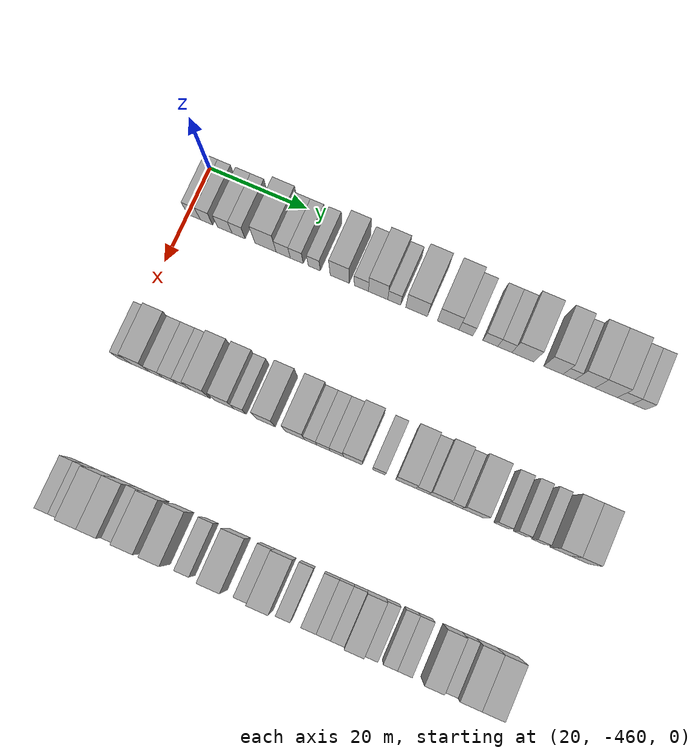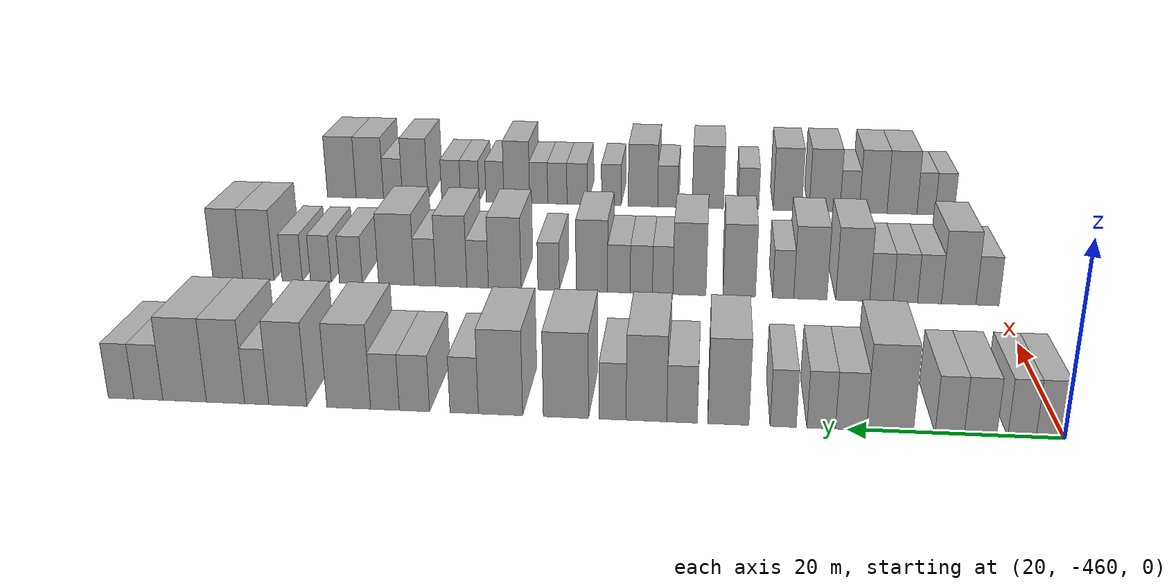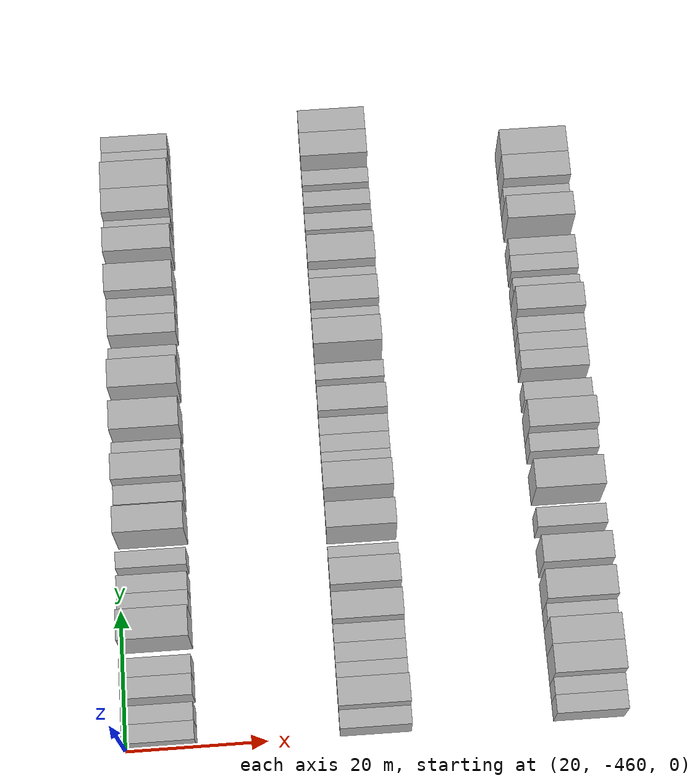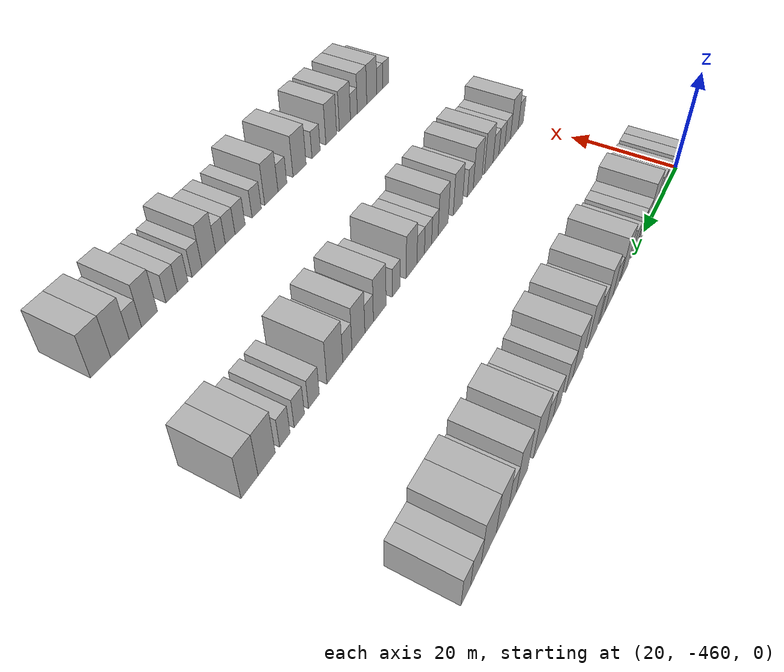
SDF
<sdf version="1.6">
 <world name="default">
  <model name="building_1">
   <static>1</static>
   <pose>25.0000 -458.6790 0 0.000000 0.000000 0.000000</pose>
   <link name="link">
    <pose>0 0 3.00 0 0 0</pose>
    <collision name="collision"><geometry><box><size>10.0000 2.6420 6.0000</size></box></geometry></collision>
    <visual name="visual">
     <cast_shadows>0</cast_shadows>
     <geometry><box><size>10.0000 2.6420 6.0000</size></box></geometry>
     <material>
      <script>
       <uri>model://HANNAS_wall/materials/scripts</uri>
       <uri>model://HANNAS_wall/materials/textures</uri>
       <name>vrc/HANNAS_wall</name>
      </script>
     </material>
    </visual>
   </link>
  </model>
  <model name="building_2">
   <static>1</static>
   <pose>25.0000 -456.0709 0 0.000000 0.000000 0.000000</pose>
   <link name="link">
    <pose>0 0 3.00 0 0 0</pose>
    <collision name="collision"><geometry><box><size>10.0000 2.5742 6.0000</size></box></geometry></collision>
    <visual name="visual">
     <cast_shadows>0</cast_shadows>
     <geometry><box><size>10.0000 2.5742 6.0000</size></box></geometry>
     <material>
      <script>
       <uri>model://HANNAS_wall/materials/scripts</uri>
       <uri>model://HANNAS_wall/materials/textures</uri>
       <name>vrc/HANNAS_wall</name>
      </script>
     </material>
    </visual>
   </link>
  </model>
  <model name="building_3">
   <static>1</static>
   <pose>25.0000 -452.2917 0 0.000000 0.000000 0.000000</pose>
   <link name="link">
    <pose>0 0 3.00 0 0 0</pose>
    <collision name="collision"><geometry><box><size>10.0000 2.9840 6.0000</size></box></geometry></collision>
    <visual name="visual">
     <cast_shadows>0</cast_shadows>
     <geometry><box><size>10.0000 2.9840 6.0000</size></box></geometry>
     <material>
      <script>
       <uri>model://HANNAS_wall/materials/scripts</uri>
       <uri>model://HANNAS_wall/materials/textures</uri>
       <name>vrc/HANNAS_wall</name>
      </script>
     </material>
    </visual>
   </link>
  </model>
  <model name="building_4">
   <static>1</static>
   <pose>25.0000 -449.4564 0 0.000000 0.000000 0.000000</pose>
   <link name="link">
    <pose>0 0 3.00 0 0 0</pose>
    <collision name="collision"><geometry><box><size>10.0000 2.6867 6.0000</size></box></geometry></collision>
    <visual name="visual">
     <cast_shadows>0</cast_shadows>
     <geometry><box><size>10.0000 2.6867 6.0000</size></box></geometry>
     <material>
      <script>
       <uri>model://HANNAS_wall/materials/scripts</uri>
       <uri>model://HANNAS_wall/materials/textures</uri>
       <name>vrc/HANNAS_wall</name>
      </script>
     </material>
    </visual>
   </link>
  </model>
  <model name="building_5">
   <static>1</static>
   <pose>25.0000 -443.9394 0 0.000000 0.000000 0.000000</pose>
   <link name="link">
    <pose>0 0 4.50 0 0 0</pose>
    <collision name="collision"><geometry><box><size>10.0000 4.3474 9.0000</size></box></geometry></collision>
    <visual name="visual">
     <cast_shadows>0</cast_shadows>
     <geometry><box><size>10.0000 4.3474 9.0000</size></box></geometry>
     <material>
      <script>
       <uri>model://HANNAS_wall/materials/scripts</uri>
       <uri>model://HANNAS_wall/materials/textures</uri>
       <name>vrc/HANNAS_wall</name>
      </script>
     </material>
    </visual>
   </link>
  </model>
  <model name="building_6">
   <static>1</static>
   <pose>25.0000 -440.3176 0 0.000000 0.000000 0.000000</pose>
   <link name="link">
    <pose>0 0 3.00 0 0 0</pose>
    <collision name="collision"><geometry><box><size>10.0000 2.8962 6.0000</size></box></geometry></collision>
    <visual name="visual">
     <cast_shadows>0</cast_shadows>
     <geometry><box><size>10.0000 2.8962 6.0000</size></box></geometry>
     <material>
      <script>
       <uri>model://HANNAS_wall/materials/scripts</uri>
       <uri>model://HANNAS_wall/materials/textures</uri>
       <name>vrc/HANNAS_wall</name>
      </script>
     </material>
    </visual>
   </link>
  </model>
  <model name="building_7">
   <static>1</static>
   <pose>25.0000 -437.5378 0 0.000000 0.000000 0.000000</pose>
   <link name="link">
    <pose>0 0 3.00 0 0 0</pose>
    <collision name="collision"><geometry><box><size>10.0000 2.6634 6.0000</size></box></geometry></collision>
    <visual name="visual">
     <cast_shadows>0</cast_shadows>
     <geometry><box><size>10.0000 2.6634 6.0000</size></box></geometry>
     <material>
      <script>
       <uri>model://HANNAS_wall/materials/scripts</uri>
       <uri>model://HANNAS_wall/materials/textures</uri>
       <name>vrc/HANNAS_wall</name>
      </script>
     </material>
    </visual>
   </link>
  </model>
  <model name="building_8">
   <static>1</static>
   <pose>25.0000 -433.9782 0 0.000000 0.000000 0.000000</pose>
   <link name="link">
    <pose>0 0 3.00 0 0 0</pose>
    <collision name="collision"><geometry><box><size>10.0000 2.4559 6.0000</size></box></geometry></collision>
    <visual name="visual">
     <cast_shadows>0</cast_shadows>
     <geometry><box><size>10.0000 2.4559 6.0000</size></box></geometry>
     <material>
      <script>
       <uri>model://HANNAS_wall/materials/scripts</uri>
       <uri>model://HANNAS_wall/materials/textures</uri>
       <name>vrc/HANNAS_wall</name>
      </script>
     </material>
    </visual>
   </link>
  </model>
  <model name="building_9">
   <static>1</static>
   <pose>25.0000 -428.8074 0 0.000000 0.000000 0.000000</pose>
   <link name="link">
    <pose>0 0 4.50 0 0 0</pose>
    <collision name="collision"><geometry><box><size>10.0000 3.8858 9.0000</size></box></geometry></collision>
    <visual name="visual">
     <cast_shadows>0</cast_shadows>
     <geometry><box><size>10.0000 3.8858 9.0000</size></box></geometry>
     <material>
      <script>
       <uri>model://HANNAS_wall/materials/scripts</uri>
       <uri>model://HANNAS_wall/materials/textures</uri>
       <name>vrc/HANNAS_wall</name>
      </script>
     </material>
    </visual>
   </link>
  </model>
  <model name="building_10">
   <static>1</static>
   <pose>25.0000 -424.4142 0 0.000000 0.000000 0.000000</pose>
   <link name="link">
    <pose>0 0 3.00 0 0 0</pose>
    <collision name="collision"><geometry><box><size>10.0000 2.9006 6.0000</size></box></geometry></collision>
    <visual name="visual">
     <cast_shadows>0</cast_shadows>
     <geometry><box><size>10.0000 2.9006 6.0000</size></box></geometry>
     <material>
      <script>
       <uri>model://HANNAS_wall/materials/scripts</uri>
       <uri>model://HANNAS_wall/materials/textures</uri>
       <name>vrc/HANNAS_wall</name>
      </script>
     </material>
    </visual>
   </link>
  </model>
  <model name="building_11">
   <static>1</static>
   <pose>25.0000 -421.0236 0 0.000000 0.000000 0.000000</pose>
   <link name="link">
    <pose>0 0 4.50 0 0 0</pose>
    <collision name="collision"><geometry><box><size>10.0000 3.8806 9.0000</size></box></geometry></collision>
    <visual name="visual">
     <cast_shadows>0</cast_shadows>
     <geometry><box><size>10.0000 3.8806 9.0000</size></box></geometry>
     <material>
      <script>
       <uri>model://HANNAS_wall/materials/scripts</uri>
       <uri>model://HANNAS_wall/materials/textures</uri>
       <name>vrc/HANNAS_wall</name>
      </script>
     </material>
    </visual>
   </link>
  </model>
  <model name="building_12">
   <static>1</static>
   <pose>25.0000 -417.7774 0 0.000000 0.000000 0.000000</pose>
   <link name="link">
    <pose>0 0 3.00 0 0 0</pose>
    <collision name="collision"><geometry><box><size>10.0000 2.6117 6.0000</size></box></geometry></collision>
    <visual name="visual">
     <cast_shadows>0</cast_shadows>
     <geometry><box><size>10.0000 2.6117 6.0000</size></box></geometry>
     <material>
      <script>
       <uri>model://HANNAS_wall/materials/scripts</uri>
       <uri>model://HANNAS_wall/materials/textures</uri>
       <name>vrc/HANNAS_wall</name>
      </script>
     </material>
    </visual>
   </link>
  </model>
  <model name="building_13">
   <static>1</static>
   <pose>25.0000 -413.2900 0 0.000000 0.000000 0.000000</pose>
   <link name="link">
    <pose>0 0 4.50 0 0 0</pose>
    <collision name="collision"><geometry><box><size>10.0000 4.3631 9.0000</size></box></geometry></collision>
    <visual name="visual">
     <cast_shadows>0</cast_shadows>
     <geometry><box><size>10.0000 4.3631 9.0000</size></box></geometry>
     <material>
      <script>
       <uri>model://HANNAS_wall/materials/scripts</uri>
       <uri>model://HANNAS_wall/materials/textures</uri>
       <name>vrc/HANNAS_wall</name>
      </script>
     </material>
    </visual>
   </link>
  </model>
  <model name="building_14">
   <static>1</static>
   <pose>25.0000 -406.9527 0 0.000000 0.000000 0.000000</pose>
   <link name="link">
    <pose>0 0 4.50 0 0 0</pose>
    <collision name="collision"><geometry><box><size>10.0000 4.3116 9.0000</size></box></geometry></collision>
    <visual name="visual">
     <cast_shadows>0</cast_shadows>
     <geometry><box><size>10.0000 4.3116 9.0000</size></box></geometry>
     <material>
      <script>
       <uri>model://HANNAS_wall/materials/scripts</uri>
       <uri>model://HANNAS_wall/materials/textures</uri>
       <name>vrc/HANNAS_wall</name>
      </script>
     </material>
    </visual>
   </link>
  </model>
  <model name="building_15">
   <static>1</static>
   <pose>25.0000 -403.4073 0 0.000000 0.000000 0.000000</pose>
   <link name="link">
    <pose>0 0 3.00 0 0 0</pose>
    <collision name="collision"><geometry><box><size>10.0000 2.7791 6.0000</size></box></geometry></collision>
    <visual name="visual">
     <cast_shadows>0</cast_shadows>
     <geometry><box><size>10.0000 2.7791 6.0000</size></box></geometry>
     <material>
      <script>
       <uri>model://HANNAS_wall/materials/scripts</uri>
       <uri>model://HANNAS_wall/materials/textures</uri>
       <name>vrc/HANNAS_wall</name>
      </script>
     </material>
    </visual>
   </link>
  </model>
  <model name="building_16">
   <static>1</static>
   <pose>25.0000 -398.5282 0 0.000000 0.000000 0.000000</pose>
   <link name="link">
    <pose>0 0 3.00 0 0 0</pose>
    <collision name="collision"><geometry><box><size>10.0000 2.9791 6.0000</size></box></geometry></collision>
    <visual name="visual">
     <cast_shadows>0</cast_shadows>
     <geometry><box><size>10.0000 2.9791 6.0000</size></box></geometry>
     <material>
      <script>
       <uri>model://HANNAS_wall/materials/scripts</uri>
       <uri>model://HANNAS_wall/materials/textures</uri>
       <name>vrc/HANNAS_wall</name>
      </script>
     </material>
    </visual>
   </link>
  </model>
  <model name="building_17">
   <static>1</static>
   <pose>25.0000 -395.6226 0 0.000000 0.000000 0.000000</pose>
   <link name="link">
    <pose>0 0 3.00 0 0 0</pose>
    <collision name="collision"><geometry><box><size>10.0000 2.8319 6.0000</size></box></geometry></collision>
    <visual name="visual">
     <cast_shadows>0</cast_shadows>
     <geometry><box><size>10.0000 2.8319 6.0000</size></box></geometry>
     <material>
      <script>
       <uri>model://HANNAS_wall/materials/scripts</uri>
       <uri>model://HANNAS_wall/materials/textures</uri>
       <name>vrc/HANNAS_wall</name>
      </script>
     </material>
    </visual>
   </link>
  </model>
  <model name="building_18">
   <static>1</static>
   <pose>25.0000 -392.0398 0 0.000000 0.000000 0.000000</pose>
   <link name="link">
    <pose>0 0 4.50 0 0 0</pose>
    <collision name="collision"><geometry><box><size>10.0000 4.3338 9.0000</size></box></geometry></collision>
    <visual name="visual">
     <cast_shadows>0</cast_shadows>
     <geometry><box><size>10.0000 4.3338 9.0000</size></box></geometry>
     <material>
      <script>
       <uri>model://HANNAS_wall/materials/scripts</uri>
       <uri>model://HANNAS_wall/materials/textures</uri>
       <name>vrc/HANNAS_wall</name>
      </script>
     </material>
    </visual>
   </link>
  </model>
  <model name="building_19">
   <static>1</static>
   <pose>25.0000 -385.9689 0 0.000000 0.000000 0.000000</pose>
   <link name="link">
    <pose>0 0 4.50 0 0 0</pose>
    <collision name="collision"><geometry><box><size>10.0000 3.8081 9.0000</size></box></geometry></collision>
    <visual name="visual">
     <cast_shadows>0</cast_shadows>
     <geometry><box><size>10.0000 3.8081 9.0000</size></box></geometry>
     <material>
      <script>
       <uri>model://HANNAS_wall/materials/scripts</uri>
       <uri>model://HANNAS_wall/materials/textures</uri>
       <name>vrc/HANNAS_wall</name>
      </script>
     </material>
    </visual>
   </link>
  </model>
  <model name="building_20">
   <static>1</static>
   <pose>25.0000 -382.8556 0 0.000000 0.000000 0.000000</pose>
   <link name="link">
    <pose>0 0 3.00 0 0 0</pose>
    <collision name="collision"><geometry><box><size>10.0000 2.4185 6.0000</size></box></geometry></collision>
    <visual name="visual">
     <cast_shadows>0</cast_shadows>
     <geometry><box><size>10.0000 2.4185 6.0000</size></box></geometry>
     <material>
      <script>
       <uri>model://HANNAS_wall/materials/scripts</uri>
       <uri>model://HANNAS_wall/materials/textures</uri>
       <name>vrc/HANNAS_wall</name>
      </script>
     </material>
    </visual>
   </link>
  </model>
  <model name="building_21">
   <static>1</static>
   <pose>25.0000 -379.7127 0 0.000000 0.000000 0.000000</pose>
   <link name="link">
    <pose>0 0 4.50 0 0 0</pose>
    <collision name="collision"><geometry><box><size>10.0000 3.8672 9.0000</size></box></geometry></collision>
    <visual name="visual">
     <cast_shadows>0</cast_shadows>
     <geometry><box><size>10.0000 3.8672 9.0000</size></box></geometry>
     <material>
      <script>
       <uri>model://HANNAS_wall/materials/scripts</uri>
       <uri>model://HANNAS_wall/materials/textures</uri>
       <name>vrc/HANNAS_wall</name>
      </script>
     </material>
    </visual>
   </link>
  </model>
  <model name="building_22">
   <static>1</static>
   <pose>25.0000 -375.5730 0 0.000000 0.000000 0.000000</pose>
   <link name="link">
    <pose>0 0 4.50 0 0 0</pose>
    <collision name="collision"><geometry><box><size>10.0000 4.4122 9.0000</size></box></geometry></collision>
    <visual name="visual">
     <cast_shadows>0</cast_shadows>
     <geometry><box><size>10.0000 4.4122 9.0000</size></box></geometry>
     <material>
      <script>
       <uri>model://HANNAS_wall/materials/scripts</uri>
       <uri>model://HANNAS_wall/materials/textures</uri>
       <name>vrc/HANNAS_wall</name>
      </script>
     </material>
    </visual>
   </link>
  </model>
  <model name="building_23">
   <static>1</static>
   <pose>25.0000 -371.8883 0 0.000000 0.000000 0.000000</pose>
   <link name="link">
    <pose>0 0 3.00 0 0 0</pose>
    <collision name="collision"><geometry><box><size>10.0000 2.9571 6.0000</size></box></geometry></collision>
    <visual name="visual">
     <cast_shadows>0</cast_shadows>
     <geometry><box><size>10.0000 2.9571 6.0000</size></box></geometry>
     <material>
      <script>
       <uri>model://HANNAS_wall/materials/scripts</uri>
       <uri>model://HANNAS_wall/materials/textures</uri>
       <name>vrc/HANNAS_wall</name>
      </script>
     </material>
    </visual>
   </link>
  </model>
  <model name="building_24">
   <static>1</static>
   <pose>25.0000 -369.1019 0 0.000000 0.000000 0.000000</pose>
   <link name="link">
    <pose>0 0 3.00 0 0 0</pose>
    <collision name="collision"><geometry><box><size>10.0000 2.6157 6.0000</size></box></geometry></collision>
    <visual name="visual">
     <cast_shadows>0</cast_shadows>
     <geometry><box><size>10.0000 2.6157 6.0000</size></box></geometry>
     <material>
      <script>
       <uri>model://HANNAS_wall/materials/scripts</uri>
       <uri>model://HANNAS_wall/materials/textures</uri>
       <name>vrc/HANNAS_wall</name>
      </script>
     </material>
    </visual>
   </link>
  </model>
  <model name="building_226">
   <static>1</static>
   <pose>55.0000 -458.6946 0 0.000000 0.000000 0.000000</pose>
   <link name="link">
    <pose>0 0 3.00 0 0 0</pose>
    <collision name="collision"><geometry><box><size>10.0000 2.6108 6.0000</size></box></geometry></collision>
    <visual name="visual">
     <cast_shadows>0</cast_shadows>
     <geometry><box><size>10.0000 2.6108 6.0000</size></box></geometry>
     <material>
      <script>
       <uri>model://HANNAS_wall/materials/scripts</uri>
       <uri>model://HANNAS_wall/materials/textures</uri>
       <name>vrc/HANNAS_wall</name>
      </script>
     </material>
    </visual>
   </link>
  </model>
  <model name="building_227">
   <static>1</static>
   <pose>55.0000 -455.4352 0 0.000000 0.000000 0.000000</pose>
   <link name="link">
    <pose>0 0 4.50 0 0 0</pose>
    <collision name="collision"><geometry><box><size>10.0000 3.9079 9.0000</size></box></geometry></collision>
    <visual name="visual">
     <cast_shadows>0</cast_shadows>
     <geometry><box><size>10.0000 3.9079 9.0000</size></box></geometry>
     <material>
      <script>
       <uri>model://HANNAS_wall/materials/scripts</uri>
       <uri>model://HANNAS_wall/materials/textures</uri>
       <name>vrc/HANNAS_wall</name>
      </script>
     </material>
    </visual>
   </link>
  </model>
  <model name="building_228">
   <static>1</static>
   <pose>55.0000 -452.1203 0 0.000000 0.000000 0.000000</pose>
   <link name="link">
    <pose>0 0 3.00 0 0 0</pose>
    <collision name="collision"><geometry><box><size>10.0000 2.7219 6.0000</size></box></geometry></collision>
    <visual name="visual">
     <cast_shadows>0</cast_shadows>
     <geometry><box><size>10.0000 2.7219 6.0000</size></box></geometry>
     <material>
      <script>
       <uri>model://HANNAS_wall/materials/scripts</uri>
       <uri>model://HANNAS_wall/materials/textures</uri>
       <name>vrc/HANNAS_wall</name>
      </script>
     </material>
    </visual>
   </link>
  </model>
  <model name="building_229">
   <static>1</static>
   <pose>55.0000 -449.3697 0 0.000000 0.000000 0.000000</pose>
   <link name="link">
    <pose>0 0 3.00 0 0 0</pose>
    <collision name="collision"><geometry><box><size>10.0000 2.7792 6.0000</size></box></geometry></collision>
    <visual name="visual">
     <cast_shadows>0</cast_shadows>
     <geometry><box><size>10.0000 2.7792 6.0000</size></box></geometry>
     <material>
      <script>
       <uri>model://HANNAS_wall/materials/scripts</uri>
       <uri>model://HANNAS_wall/materials/textures</uri>
       <name>vrc/HANNAS_wall</name>
      </script>
     </material>
    </visual>
   </link>
  </model>
  <model name="building_230">
   <static>1</static>
   <pose>55.0000 -446.6404 0 0.000000 0.000000 0.000000</pose>
   <link name="link">
    <pose>0 0 3.00 0 0 0</pose>
    <collision name="collision"><geometry><box><size>10.0000 2.6795 6.0000</size></box></geometry></collision>
    <visual name="visual">
     <cast_shadows>0</cast_shadows>
     <geometry><box><size>10.0000 2.6795 6.0000</size></box></geometry>
     <material>
      <script>
       <uri>model://HANNAS_wall/materials/scripts</uri>
       <uri>model://HANNAS_wall/materials/textures</uri>
       <name>vrc/HANNAS_wall</name>
      </script>
     </material>
    </visual>
   </link>
  </model>
  <model name="building_231">
   <static>1</static>
   <pose>55.0000 -443.3521 0 0.000000 0.000000 0.000000</pose>
   <link name="link">
    <pose>0 0 4.50 0 0 0</pose>
    <collision name="collision"><geometry><box><size>10.0000 3.8971 9.0000</size></box></geometry></collision>
    <visual name="visual">
     <cast_shadows>0</cast_shadows>
     <geometry><box><size>10.0000 3.8971 9.0000</size></box></geometry>
     <material>
      <script>
       <uri>model://HANNAS_wall/materials/scripts</uri>
       <uri>model://HANNAS_wall/materials/textures</uri>
       <name>vrc/HANNAS_wall</name>
      </script>
     </material>
    </visual>
   </link>
  </model>
  <model name="building_232">
   <static>1</static>
   <pose>55.0000 -438.4845 0 0.000000 0.000000 0.000000</pose>
   <link name="link">
    <pose>0 0 4.50 0 0 0</pose>
    <collision name="collision"><geometry><box><size>10.0000 3.8381 9.0000</size></box></geometry></collision>
    <visual name="visual">
     <cast_shadows>0</cast_shadows>
     <geometry><box><size>10.0000 3.8381 9.0000</size></box></geometry>
     <material>
      <script>
       <uri>model://HANNAS_wall/materials/scripts</uri>
       <uri>model://HANNAS_wall/materials/textures</uri>
       <name>vrc/HANNAS_wall</name>
      </script>
     </material>
    </visual>
   </link>
  </model>
  <model name="building_233">
   <static>1</static>
   <pose>55.0000 -435.3459 0 0.000000 0.000000 0.000000</pose>
   <link name="link">
    <pose>0 0 3.00 0 0 0</pose>
    <collision name="collision"><geometry><box><size>10.0000 2.4391 6.0000</size></box></geometry></collision>
    <visual name="visual">
     <cast_shadows>0</cast_shadows>
     <geometry><box><size>10.0000 2.4391 6.0000</size></box></geometry>
     <material>
      <script>
       <uri>model://HANNAS_wall/materials/scripts</uri>
       <uri>model://HANNAS_wall/materials/textures</uri>
       <name>vrc/HANNAS_wall</name>
      </script>
     </material>
    </visual>
   </link>
  </model>
  <model name="building_234">
   <static>1</static>
   <pose>55.0000 -430.2498 0 0.000000 0.000000 0.000000</pose>
   <link name="link">
    <pose>0 0 4.50 0 0 0</pose>
    <collision name="collision"><geometry><box><size>10.0000 3.7531 9.0000</size></box></geometry></collision>
    <visual name="visual">
     <cast_shadows>0</cast_shadows>
     <geometry><box><size>10.0000 3.7531 9.0000</size></box></geometry>
     <material>
      <script>
       <uri>model://HANNAS_wall/materials/scripts</uri>
       <uri>model://HANNAS_wall/materials/textures</uri>
       <name>vrc/HANNAS_wall</name>
      </script>
     </material>
    </visual>
   </link>
  </model>
  <model name="building_235">
   <static>1</static>
   <pose>55.0000 -424.4421 0 0.000000 0.000000 0.000000</pose>
   <link name="link">
    <pose>0 0 4.50 0 0 0</pose>
    <collision name="collision"><geometry><box><size>10.0000 3.8623 9.0000</size></box></geometry></collision>
    <visual name="visual">
     <cast_shadows>0</cast_shadows>
     <geometry><box><size>10.0000 3.8623 9.0000</size></box></geometry>
     <material>
      <script>
       <uri>model://HANNAS_wall/materials/scripts</uri>
       <uri>model://HANNAS_wall/materials/textures</uri>
       <name>vrc/HANNAS_wall</name>
      </script>
     </material>
    </visual>
   </link>
  </model>
  <model name="building_236">
   <static>1</static>
   <pose>55.0000 -421.3061 0 0.000000 0.000000 0.000000</pose>
   <link name="link">
    <pose>0 0 3.00 0 0 0</pose>
    <collision name="collision"><geometry><box><size>10.0000 2.4098 6.0000</size></box></geometry></collision>
    <visual name="visual">
     <cast_shadows>0</cast_shadows>
     <geometry><box><size>10.0000 2.4098 6.0000</size></box></geometry>
     <material>
      <script>
       <uri>model://HANNAS_wall/materials/scripts</uri>
       <uri>model://HANNAS_wall/materials/textures</uri>
       <name>vrc/HANNAS_wall</name>
      </script>
     </material>
    </visual>
   </link>
  </model>
  <model name="building_237">
   <static>1</static>
   <pose>55.0000 -418.7952 0 0.000000 0.000000 0.000000</pose>
   <link name="link">
    <pose>0 0 3.00 0 0 0</pose>
    <collision name="collision"><geometry><box><size>10.0000 2.6119 6.0000</size></box></geometry></collision>
    <visual name="visual">
     <cast_shadows>0</cast_shadows>
     <geometry><box><size>10.0000 2.6119 6.0000</size></box></geometry>
     <material>
      <script>
       <uri>model://HANNAS_wall/materials/scripts</uri>
       <uri>model://HANNAS_wall/materials/textures</uri>
       <name>vrc/HANNAS_wall</name>
      </script>
     </material>
    </visual>
   </link>
  </model>
  <model name="building_238">
   <static>1</static>
   <pose>55.0000 -416.1549 0 0.000000 0.000000 0.000000</pose>
   <link name="link">
    <pose>0 0 3.00 0 0 0</pose>
    <collision name="collision"><geometry><box><size>10.0000 2.6687 6.0000</size></box></geometry></collision>
    <visual name="visual">
     <cast_shadows>0</cast_shadows>
     <geometry><box><size>10.0000 2.6687 6.0000</size></box></geometry>
     <material>
      <script>
       <uri>model://HANNAS_wall/materials/scripts</uri>
       <uri>model://HANNAS_wall/materials/textures</uri>
       <name>vrc/HANNAS_wall</name>
      </script>
     </material>
    </visual>
   </link>
  </model>
  <model name="building_239">
   <static>1</static>
   <pose>55.0000 -412.9549 0 0.000000 0.000000 0.000000</pose>
   <link name="link">
    <pose>0 0 4.50 0 0 0</pose>
    <collision name="collision"><geometry><box><size>10.0000 3.7312 9.0000</size></box></geometry></collision>
    <visual name="visual">
     <cast_shadows>0</cast_shadows>
     <geometry><box><size>10.0000 3.7312 9.0000</size></box></geometry>
     <material>
      <script>
       <uri>model://HANNAS_wall/materials/scripts</uri>
       <uri>model://HANNAS_wall/materials/textures</uri>
       <name>vrc/HANNAS_wall</name>
      </script>
     </material>
    </visual>
   </link>
  </model>
  <model name="building_240">
   <static>1</static>
   <pose>55.0000 -407.8135 0 0.000000 0.000000 0.000000</pose>
   <link name="link">
    <pose>0 0 3.00 0 0 0</pose>
    <collision name="collision"><geometry><box><size>10.0000 2.5517 6.0000</size></box></geometry></collision>
    <visual name="visual">
     <cast_shadows>0</cast_shadows>
     <geometry><box><size>10.0000 2.5517 6.0000</size></box></geometry>
     <material>
      <script>
       <uri>model://HANNAS_wall/materials/scripts</uri>
       <uri>model://HANNAS_wall/materials/textures</uri>
       <name>vrc/HANNAS_wall</name>
      </script>
     </material>
    </visual>
   </link>
  </model>
  <model name="building_241">
   <static>1</static>
   <pose>55.0000 -402.5745 0 0.000000 0.000000 0.000000</pose>
   <link name="link">
    <pose>0 0 4.50 0 0 0</pose>
    <collision name="collision"><geometry><box><size>10.0000 3.9262 9.0000</size></box></geometry></collision>
    <visual name="visual">
     <cast_shadows>0</cast_shadows>
     <geometry><box><size>10.0000 3.9262 9.0000</size></box></geometry>
     <material>
      <script>
       <uri>model://HANNAS_wall/materials/scripts</uri>
       <uri>model://HANNAS_wall/materials/textures</uri>
       <name>vrc/HANNAS_wall</name>
      </script>
     </material>
    </visual>
   </link>
  </model>
  <model name="building_242">
   <static>1</static>
   <pose>55.0000 -399.3239 0 0.000000 0.000000 0.000000</pose>
   <link name="link">
    <pose>0 0 3.00 0 0 0</pose>
    <collision name="collision"><geometry><box><size>10.0000 2.5750 6.0000</size></box></geometry></collision>
    <visual name="visual">
     <cast_shadows>0</cast_shadows>
     <geometry><box><size>10.0000 2.5750 6.0000</size></box></geometry>
     <material>
      <script>
       <uri>model://HANNAS_wall/materials/scripts</uri>
       <uri>model://HANNAS_wall/materials/textures</uri>
       <name>vrc/HANNAS_wall</name>
      </script>
     </material>
    </visual>
   </link>
  </model>
  <model name="building_243">
   <static>1</static>
   <pose>55.0000 -396.1547 0 0.000000 0.000000 0.000000</pose>
   <link name="link">
    <pose>0 0 4.50 0 0 0</pose>
    <collision name="collision"><geometry><box><size>10.0000 3.7635 9.0000</size></box></geometry></collision>
    <visual name="visual">
     <cast_shadows>0</cast_shadows>
     <geometry><box><size>10.0000 3.7635 9.0000</size></box></geometry>
     <material>
      <script>
       <uri>model://HANNAS_wall/materials/scripts</uri>
       <uri>model://HANNAS_wall/materials/textures</uri>
       <name>vrc/HANNAS_wall</name>
      </script>
     </material>
    </visual>
   </link>
  </model>
  <model name="building_244">
   <static>1</static>
   <pose>55.0000 -392.9802 0 0.000000 0.000000 0.000000</pose>
   <link name="link">
    <pose>0 0 3.00 0 0 0</pose>
    <collision name="collision"><geometry><box><size>10.0000 2.5856 6.0000</size></box></geometry></collision>
    <visual name="visual">
     <cast_shadows>0</cast_shadows>
     <geometry><box><size>10.0000 2.5856 6.0000</size></box></geometry>
     <material>
      <script>
       <uri>model://HANNAS_wall/materials/scripts</uri>
       <uri>model://HANNAS_wall/materials/textures</uri>
       <name>vrc/HANNAS_wall</name>
      </script>
     </material>
    </visual>
   </link>
  </model>
  <model name="building_245">
   <static>1</static>
   <pose>55.0000 -389.5143 0 0.000000 0.000000 0.000000</pose>
   <link name="link">
    <pose>0 0 4.50 0 0 0</pose>
    <collision name="collision"><geometry><box><size>10.0000 4.3462 9.0000</size></box></geometry></collision>
    <visual name="visual">
     <cast_shadows>0</cast_shadows>
     <geometry><box><size>10.0000 4.3462 9.0000</size></box></geometry>
     <material>
      <script>
       <uri>model://HANNAS_wall/materials/scripts</uri>
       <uri>model://HANNAS_wall/materials/textures</uri>
       <name>vrc/HANNAS_wall</name>
      </script>
     </material>
    </visual>
   </link>
  </model>
  <model name="building_246">
   <static>1</static>
   <pose>55.0000 -383.9481 0 0.000000 0.000000 0.000000</pose>
   <link name="link">
    <pose>0 0 3.00 0 0 0</pose>
    <collision name="collision"><geometry><box><size>10.0000 2.7863 6.0000</size></box></geometry></collision>
    <visual name="visual">
     <cast_shadows>0</cast_shadows>
     <geometry><box><size>10.0000 2.7863 6.0000</size></box></geometry>
     <material>
      <script>
       <uri>model://HANNAS_wall/materials/scripts</uri>
       <uri>model://HANNAS_wall/materials/textures</uri>
       <name>vrc/HANNAS_wall</name>
      </script>
     </material>
    </visual>
   </link>
  </model>
  <model name="building_247">
   <static>1</static>
   <pose>55.0000 -380.2793 0 0.000000 0.000000 0.000000</pose>
   <link name="link">
    <pose>0 0 3.00 0 0 0</pose>
    <collision name="collision"><geometry><box><size>10.0000 2.5513 6.0000</size></box></geometry></collision>
    <visual name="visual">
     <cast_shadows>0</cast_shadows>
     <geometry><box><size>10.0000 2.5513 6.0000</size></box></geometry>
     <material>
      <script>
       <uri>model://HANNAS_wall/materials/scripts</uri>
       <uri>model://HANNAS_wall/materials/textures</uri>
       <name>vrc/HANNAS_wall</name>
      </script>
     </material>
    </visual>
   </link>
  </model>
  <model name="building_248">
   <static>1</static>
   <pose>55.0000 -376.7611 0 0.000000 0.000000 0.000000</pose>
   <link name="link">
    <pose>0 0 3.00 0 0 0</pose>
    <collision name="collision"><geometry><box><size>10.0000 2.4852 6.0000</size></box></geometry></collision>
    <visual name="visual">
     <cast_shadows>0</cast_shadows>
     <geometry><box><size>10.0000 2.4852 6.0000</size></box></geometry>
     <material>
      <script>
       <uri>model://HANNAS_wall/materials/scripts</uri>
       <uri>model://HANNAS_wall/materials/textures</uri>
       <name>vrc/HANNAS_wall</name>
      </script>
     </material>
    </visual>
   </link>
  </model>
  <model name="building_249">
   <static>1</static>
   <pose>55.0000 -372.5733 0 0.000000 0.000000 0.000000</pose>
   <link name="link">
    <pose>0 0 4.50 0 0 0</pose>
    <collision name="collision"><geometry><box><size>10.0000 3.8904 9.0000</size></box></geometry></collision>
    <visual name="visual">
     <cast_shadows>0</cast_shadows>
     <geometry><box><size>10.0000 3.8904 9.0000</size></box></geometry>
     <material>
      <script>
       <uri>model://HANNAS_wall/materials/scripts</uri>
       <uri>model://HANNAS_wall/materials/textures</uri>
       <name>vrc/HANNAS_wall</name>
      </script>
     </material>
    </visual>
   </link>
  </model>
  <model name="building_250">
   <static>1</static>
   <pose>55.0000 -368.7819 0 0.000000 0.000000 0.000000</pose>
   <link name="link">
    <pose>0 0 4.50 0 0 0</pose>
    <collision name="collision"><geometry><box><size>10.0000 3.6924 9.0000</size></box></geometry></collision>
    <visual name="visual">
     <cast_shadows>0</cast_shadows>
     <geometry><box><size>10.0000 3.6924 9.0000</size></box></geometry>
     <material>
      <script>
       <uri>model://HANNAS_wall/materials/scripts</uri>
       <uri>model://HANNAS_wall/materials/textures</uri>
       <name>vrc/HANNAS_wall</name>
      </script>
     </material>
    </visual>
   </link>
  </model>
  <model name="building_454">
   <static>1</static>
   <pose>85.0000 -458.7041 0 0.000000 0.000000 0.000000</pose>
   <link name="link">
    <pose>0 0 3.00 0 0 0</pose>
    <collision name="collision"><geometry><box><size>10.0000 2.5917 6.0000</size></box></geometry></collision>
    <visual name="visual">
     <cast_shadows>0</cast_shadows>
     <geometry><box><size>10.0000 2.5917 6.0000</size></box></geometry>
     <material>
      <script>
       <uri>model://HANNAS_wall/materials/scripts</uri>
       <uri>model://HANNAS_wall/materials/textures</uri>
       <name>vrc/HANNAS_wall</name>
      </script>
     </material>
    </visual>
   </link>
  </model>
  <model name="building_455">
   <static>1</static>
   <pose>85.0000 -456.1823 0 0.000000 0.000000 0.000000</pose>
   <link name="link">
    <pose>0 0 3.00 0 0 0</pose>
    <collision name="collision"><geometry><box><size>10.0000 2.4520 6.0000</size></box></geometry></collision>
    <visual name="visual">
     <cast_shadows>0</cast_shadows>
     <geometry><box><size>10.0000 2.4520 6.0000</size></box></geometry>
     <material>
      <script>
       <uri>model://HANNAS_wall/materials/scripts</uri>
       <uri>model://HANNAS_wall/materials/textures</uri>
       <name>vrc/HANNAS_wall</name>
      </script>
     </material>
    </visual>
   </link>
  </model>
  <model name="building_456">
   <static>1</static>
   <pose>85.0000 -452.9220 0 0.000000 0.000000 0.000000</pose>
   <link name="link">
    <pose>0 0 4.50 0 0 0</pose>
    <collision name="collision"><geometry><box><size>10.0000 4.0686 9.0000</size></box></geometry></collision>
    <visual name="visual">
     <cast_shadows>0</cast_shadows>
     <geometry><box><size>10.0000 4.0686 9.0000</size></box></geometry>
     <material>
      <script>
       <uri>model://HANNAS_wall/materials/scripts</uri>
       <uri>model://HANNAS_wall/materials/textures</uri>
       <name>vrc/HANNAS_wall</name>
      </script>
     </material>
    </visual>
   </link>
  </model>
  <model name="building_457">
   <static>1</static>
   <pose>85.0000 -449.0112 0 0.000000 0.000000 0.000000</pose>
   <link name="link">
    <pose>0 0 4.50 0 0 0</pose>
    <collision name="collision"><geometry><box><size>10.0000 3.7530 9.0000</size></box></geometry></collision>
    <visual name="visual">
     <cast_shadows>0</cast_shadows>
     <geometry><box><size>10.0000 3.7530 9.0000</size></box></geometry>
     <material>
      <script>
       <uri>model://HANNAS_wall/materials/scripts</uri>
       <uri>model://HANNAS_wall/materials/textures</uri>
       <name>vrc/HANNAS_wall</name>
      </script>
     </material>
    </visual>
   </link>
  </model>
  <model name="building_458">
   <static>1</static>
   <pose>85.0000 -445.8155 0 0.000000 0.000000 0.000000</pose>
   <link name="link">
    <pose>0 0 3.00 0 0 0</pose>
    <collision name="collision"><geometry><box><size>10.0000 2.6383 6.0000</size></box></geometry></collision>
    <visual name="visual">
     <cast_shadows>0</cast_shadows>
     <geometry><box><size>10.0000 2.6383 6.0000</size></box></geometry>
     <material>
      <script>
       <uri>model://HANNAS_wall/materials/scripts</uri>
       <uri>model://HANNAS_wall/materials/textures</uri>
       <name>vrc/HANNAS_wall</name>
      </script>
     </material>
    </visual>
   </link>
  </model>
  <model name="building_459">
   <static>1</static>
   <pose>85.0000 -442.3885 0 0.000000 0.000000 0.000000</pose>
   <link name="link">
    <pose>0 0 4.50 0 0 0</pose>
    <collision name="collision"><geometry><box><size>10.0000 4.2158 9.0000</size></box></geometry></collision>
    <visual name="visual">
     <cast_shadows>0</cast_shadows>
     <geometry><box><size>10.0000 4.2158 9.0000</size></box></geometry>
     <material>
      <script>
       <uri>model://HANNAS_wall/materials/scripts</uri>
       <uri>model://HANNAS_wall/materials/textures</uri>
       <name>vrc/HANNAS_wall</name>
      </script>
     </material>
    </visual>
   </link>
  </model>
  <model name="building_460">
   <static>1</static>
   <pose>85.0000 -437.3177 0 0.000000 0.000000 0.000000</pose>
   <link name="link">
    <pose>0 0 4.50 0 0 0</pose>
    <collision name="collision"><geometry><box><size>10.0000 3.9258 9.0000</size></box></geometry></collision>
    <visual name="visual">
     <cast_shadows>0</cast_shadows>
     <geometry><box><size>10.0000 3.9258 9.0000</size></box></geometry>
     <material>
      <script>
       <uri>model://HANNAS_wall/materials/scripts</uri>
       <uri>model://HANNAS_wall/materials/textures</uri>
       <name>vrc/HANNAS_wall</name>
      </script>
     </material>
    </visual>
   </link>
  </model>
  <model name="building_461">
   <static>1</static>
   <pose>85.0000 -431.9206 0 0.000000 0.000000 0.000000</pose>
   <link name="link">
    <pose>0 0 3.00 0 0 0</pose>
    <collision name="collision"><geometry><box><size>10.0000 2.8683 6.0000</size></box></geometry></collision>
    <visual name="visual">
     <cast_shadows>0</cast_shadows>
     <geometry><box><size>10.0000 2.8683 6.0000</size></box></geometry>
     <material>
      <script>
       <uri>model://HANNAS_wall/materials/scripts</uri>
       <uri>model://HANNAS_wall/materials/textures</uri>
       <name>vrc/HANNAS_wall</name>
      </script>
     </material>
    </visual>
   </link>
  </model>
  <model name="building_462">
   <static>1</static>
   <pose>85.0000 -426.3150 0 0.000000 0.000000 0.000000</pose>
   <link name="link">
    <pose>0 0 4.50 0 0 0</pose>
    <collision name="collision"><geometry><box><size>10.0000 4.3428 9.0000</size></box></geometry></collision>
    <visual name="visual">
     <cast_shadows>0</cast_shadows>
     <geometry><box><size>10.0000 4.3428 9.0000</size></box></geometry>
     <material>
      <script>
       <uri>model://HANNAS_wall/materials/scripts</uri>
       <uri>model://HANNAS_wall/materials/textures</uri>
       <name>vrc/HANNAS_wall</name>
      </script>
     </material>
    </visual>
   </link>
  </model>
  <model name="building_463">
   <static>1</static>
   <pose>85.0000 -420.7395 0 0.000000 0.000000 0.000000</pose>
   <link name="link">
    <pose>0 0 3.00 0 0 0</pose>
    <collision name="collision"><geometry><box><size>10.0000 2.8082 6.0000</size></box></geometry></collision>
    <visual name="visual">
     <cast_shadows>0</cast_shadows>
     <geometry><box><size>10.0000 2.8082 6.0000</size></box></geometry>
     <material>
      <script>
       <uri>model://HANNAS_wall/materials/scripts</uri>
       <uri>model://HANNAS_wall/materials/textures</uri>
       <name>vrc/HANNAS_wall</name>
      </script>
     </material>
    </visual>
   </link>
  </model>
  <model name="building_464">
   <static>1</static>
   <pose>85.0000 -417.2795 0 0.000000 0.000000 0.000000</pose>
   <link name="link">
    <pose>0 0 4.50 0 0 0</pose>
    <collision name="collision"><geometry><box><size>10.0000 4.1118 9.0000</size></box></geometry></collision>
    <visual name="visual">
     <cast_shadows>0</cast_shadows>
     <geometry><box><size>10.0000 4.1118 9.0000</size></box></geometry>
     <material>
      <script>
       <uri>model://HANNAS_wall/materials/scripts</uri>
       <uri>model://HANNAS_wall/materials/textures</uri>
       <name>vrc/HANNAS_wall</name>
      </script>
     </material>
    </visual>
   </link>
  </model>
  <model name="building_465">
   <static>1</static>
   <pose>85.0000 -412.8442 0 0.000000 0.000000 0.000000</pose>
   <link name="link">
    <pose>0 0 3.00 0 0 0</pose>
    <collision name="collision"><geometry><box><size>10.0000 2.7587 6.0000</size></box></geometry></collision>
    <visual name="visual">
     <cast_shadows>0</cast_shadows>
     <geometry><box><size>10.0000 2.7587 6.0000</size></box></geometry>
     <material>
      <script>
       <uri>model://HANNAS_wall/materials/scripts</uri>
       <uri>model://HANNAS_wall/materials/textures</uri>
       <name>vrc/HANNAS_wall</name>
      </script>
     </material>
    </visual>
   </link>
  </model>
  <model name="building_466">
   <static>1</static>
   <pose>85.0000 -408.0343 0 0.000000 0.000000 0.000000</pose>
   <link name="link">
    <pose>0 0 3.00 0 0 0</pose>
    <collision name="collision"><geometry><box><size>10.0000 2.8612 6.0000</size></box></geometry></collision>
    <visual name="visual">
     <cast_shadows>0</cast_shadows>
     <geometry><box><size>10.0000 2.8612 6.0000</size></box></geometry>
     <material>
      <script>
       <uri>model://HANNAS_wall/materials/scripts</uri>
       <uri>model://HANNAS_wall/materials/textures</uri>
       <name>vrc/HANNAS_wall</name>
      </script>
     </material>
    </visual>
   </link>
  </model>
  <model name="building_467">
   <static>1</static>
   <pose>85.0000 -405.2429 0 0.000000 0.000000 0.000000</pose>
   <link name="link">
    <pose>0 0 3.00 0 0 0</pose>
    <collision name="collision"><geometry><box><size>10.0000 2.7215 6.0000</size></box></geometry></collision>
    <visual name="visual">
     <cast_shadows>0</cast_shadows>
     <geometry><box><size>10.0000 2.7215 6.0000</size></box></geometry>
     <material>
      <script>
       <uri>model://HANNAS_wall/materials/scripts</uri>
       <uri>model://HANNAS_wall/materials/textures</uri>
       <name>vrc/HANNAS_wall</name>
      </script>
     </material>
    </visual>
   </link>
  </model>
  <model name="building_468">
   <static>1</static>
   <pose>85.0000 -402.6041 0 0.000000 0.000000 0.000000</pose>
   <link name="link">
    <pose>0 0 3.00 0 0 0</pose>
    <collision name="collision"><geometry><box><size>10.0000 2.5562 6.0000</size></box></geometry></collision>
    <visual name="visual">
     <cast_shadows>0</cast_shadows>
     <geometry><box><size>10.0000 2.5562 6.0000</size></box></geometry>
     <material>
      <script>
       <uri>model://HANNAS_wall/materials/scripts</uri>
       <uri>model://HANNAS_wall/materials/textures</uri>
       <name>vrc/HANNAS_wall</name>
      </script>
     </material>
    </visual>
   </link>
  </model>
  <model name="building_469">
   <static>1</static>
   <pose>85.0000 -399.4996 0 0.000000 0.000000 0.000000</pose>
   <link name="link">
    <pose>0 0 4.50 0 0 0</pose>
    <collision name="collision"><geometry><box><size>10.0000 3.6528 9.0000</size></box></geometry></collision>
    <visual name="visual">
     <cast_shadows>0</cast_shadows>
     <geometry><box><size>10.0000 3.6528 9.0000</size></box></geometry>
     <material>
      <script>
       <uri>model://HANNAS_wall/materials/scripts</uri>
       <uri>model://HANNAS_wall/materials/textures</uri>
       <name>vrc/HANNAS_wall</name>
      </script>
     </material>
    </visual>
   </link>
  </model>
  <model name="building_470">
   <static>1</static>
   <pose>85.0000 -396.3975 0 0.000000 0.000000 0.000000</pose>
   <link name="link">
    <pose>0 0 3.00 0 0 0</pose>
    <collision name="collision"><geometry><box><size>10.0000 2.5514 6.0000</size></box></geometry></collision>
    <visual name="visual">
     <cast_shadows>0</cast_shadows>
     <geometry><box><size>10.0000 2.5514 6.0000</size></box></geometry>
     <material>
      <script>
       <uri>model://HANNAS_wall/materials/scripts</uri>
       <uri>model://HANNAS_wall/materials/textures</uri>
       <name>vrc/HANNAS_wall</name>
      </script>
     </material>
    </visual>
   </link>
  </model>
  <model name="building_471">
   <static>1</static>
   <pose>85.0000 -392.8060 0 0.000000 0.000000 0.000000</pose>
   <link name="link">
    <pose>0 0 3.00 0 0 0</pose>
    <collision name="collision"><geometry><box><size>10.0000 2.6317 6.0000</size></box></geometry></collision>
    <visual name="visual">
     <cast_shadows>0</cast_shadows>
     <geometry><box><size>10.0000 2.6317 6.0000</size></box></geometry>
     <material>
      <script>
       <uri>model://HANNAS_wall/materials/scripts</uri>
       <uri>model://HANNAS_wall/materials/textures</uri>
       <name>vrc/HANNAS_wall</name>
      </script>
     </material>
    </visual>
   </link>
  </model>
  <model name="building_472">
   <static>1</static>
   <pose>85.0000 -390.1279 0 0.000000 0.000000 0.000000</pose>
   <link name="link">
    <pose>0 0 3.00 0 0 0</pose>
    <collision name="collision"><geometry><box><size>10.0000 2.7244 6.0000</size></box></geometry></collision>
    <visual name="visual">
     <cast_shadows>0</cast_shadows>
     <geometry><box><size>10.0000 2.7244 6.0000</size></box></geometry>
     <material>
      <script>
       <uri>model://HANNAS_wall/materials/scripts</uri>
       <uri>model://HANNAS_wall/materials/textures</uri>
       <name>vrc/HANNAS_wall</name>
      </script>
     </material>
    </visual>
   </link>
  </model>
  <model name="building_473">
   <static>1</static>
   <pose>85.0000 -384.9431 0 0.000000 0.000000 0.000000</pose>
   <link name="link">
    <pose>0 0 4.50 0 0 0</pose>
    <collision name="collision"><geometry><box><size>10.0000 3.6452 9.0000</size></box></geometry></collision>
    <visual name="visual">
     <cast_shadows>0</cast_shadows>
     <geometry><box><size>10.0000 3.6452 9.0000</size></box></geometry>
     <material>
      <script>
       <uri>model://HANNAS_wall/materials/scripts</uri>
       <uri>model://HANNAS_wall/materials/textures</uri>
       <name>vrc/HANNAS_wall</name>
      </script>
     </material>
    </visual>
   </link>
  </model>
  <model name="building_474">
   <static>1</static>
   <pose>85.0000 -381.7502 0 0.000000 0.000000 0.000000</pose>
   <link name="link">
    <pose>0 0 3.00 0 0 0</pose>
    <collision name="collision"><geometry><box><size>10.0000 2.7407 6.0000</size></box></geometry></collision>
    <visual name="visual">
     <cast_shadows>0</cast_shadows>
     <geometry><box><size>10.0000 2.7407 6.0000</size></box></geometry>
     <material>
      <script>
       <uri>model://HANNAS_wall/materials/scripts</uri>
       <uri>model://HANNAS_wall/materials/textures</uri>
       <name>vrc/HANNAS_wall</name>
      </script>
     </material>
    </visual>
   </link>
  </model>
  <model name="building_475">
   <static>1</static>
   <pose>85.0000 -378.4029 0 0.000000 0.000000 0.000000</pose>
   <link name="link">
    <pose>0 0 4.50 0 0 0</pose>
    <collision name="collision"><geometry><box><size>10.0000 3.9538 9.0000</size></box></geometry></collision>
    <visual name="visual">
     <cast_shadows>0</cast_shadows>
     <geometry><box><size>10.0000 3.9538 9.0000</size></box></geometry>
     <material>
      <script>
       <uri>model://HANNAS_wall/materials/scripts</uri>
       <uri>model://HANNAS_wall/materials/textures</uri>
       <name>vrc/HANNAS_wall</name>
      </script>
     </material>
    </visual>
   </link>
  </model>
  <model name="building_476">
   <static>1</static>
   <pose>85.0000 -374.3432 0 0.000000 0.000000 0.000000</pose>
   <link name="link">
    <pose>0 0 4.50 0 0 0</pose>
    <collision name="collision"><geometry><box><size>10.0000 4.1656 9.0000</size></box></geometry></collision>
    <visual name="visual">
     <cast_shadows>0</cast_shadows>
     <geometry><box><size>10.0000 4.1656 9.0000</size></box></geometry>
     <material>
      <script>
       <uri>model://HANNAS_wall/materials/scripts</uri>
       <uri>model://HANNAS_wall/materials/textures</uri>
       <name>vrc/HANNAS_wall</name>
      </script>
     </material>
    </visual>
   </link>
  </model>
 </world>
</sdf>
